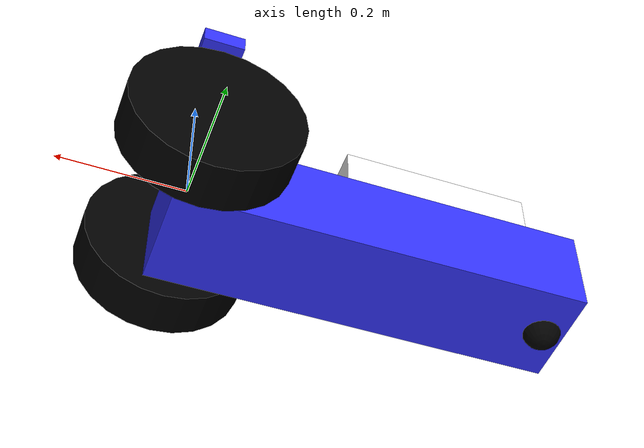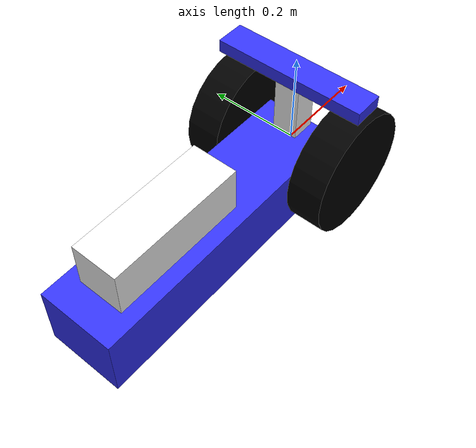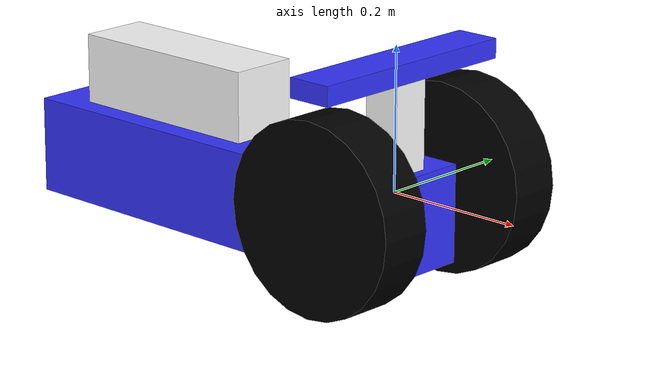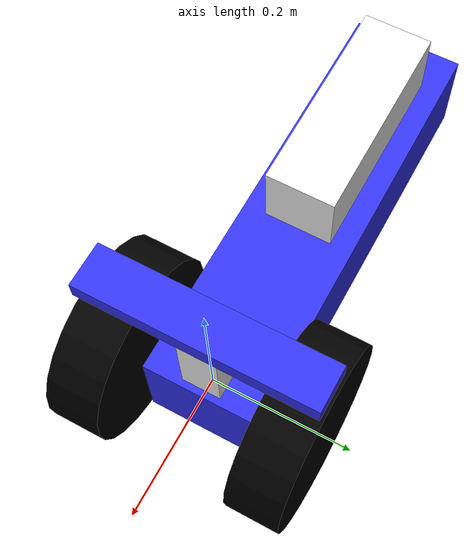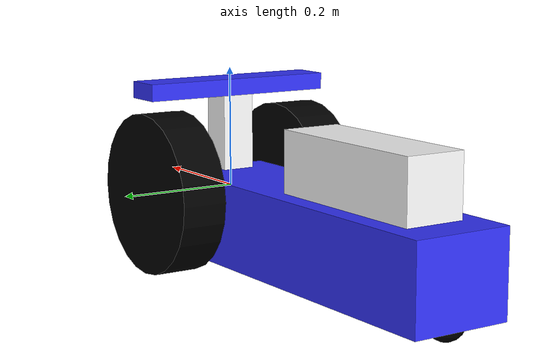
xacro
<?xml version="1.0" ?>
<robot name='robot' xmlns:xacro="http://ros.org/wiki/xacro">

    <xacro:include filename="gazebo.urdf.xacro" />
    <!--xacro:include filename="$(find robot_description)/urdf/lidar.urdf.xacro" /-->
    <!--xacro:include filename="$(find robot_description)/urdf/depth.urdf.xacro" /-->

    <xacro:property name="chassis_length" value="0.635"/>
    <xacro:property name="chassis_width" value="0.165"/>
    <xacro:property name="chassis_height" value="0.138"/>
    <xacro:property name="wheel_radius" value="0.133"/>
    <xacro:property name="wheel_thickness" value="0.076"/>
    <xacro:property name="wheel_mass" value="0.95"/>
    <xacro:property name="wheel_offset_x" value="0.6"/>
    <xacro:property name="wheel_offset_y" value="0.1285"/>
    <xacro:property name="wheel_offset_z" value="0.11"/>
    <xacro:property name="caster_wheel_radius" value="0.03"/>
    <xacro:property name="caster_wheel_mass" value="0.03"/>
    <xacro:property name="caster_wheel_offset_x" value="0.035"/>
    <xacro:property name="caster_wheel_offset_z" value="${wheel_offset_z - wheel_radius + caster_wheel_radius}"/>
    <xacro:property name="mass" value="1.0"/>

    <material name="white">
        <color rgba="1 1 1 1" />
    </material>

    <material name="orange">
        <color rgba="1 0.3 0.1 1"/>
    </material>

    <material name="blue">
        <color rgba="0.2 0.2 1 1"/>
    </material>

    <material name="black">
        <color rgba="0 0 0 1"/>
    </material>

    <material name="red">
        <color rgba="1 0 0 1"/>
    </material>

    <link name="base_link">
    </link>

    <link name="base_footprint">
    </link>

    <joint name="base_footprint_joint" type="fixed">
        <parent link="base_link"/>
        <child link="base_footprint"/>
        <origin xyz="0 0 -0.138" rpy="0 0 0"/>
    </joint>

    <joint name="chassis_joint" type="fixed">
        <parent link="base_link"/>
        <child link="chassis"/>
        <origin xyz="${-wheel_offset_x} 0 ${-wheel_offset_z}"/>
    </joint>

    <link name='chassis'>

    <inertial>
        <origin xyz="${chassis_length/2} 0 ${chassis_height/2}" rpy="0 0 0"/>
        <mass value="${mass}" />
        <inertia ixx="${(1/12) * mass * (chassis_width*chassis_width+chassis_height*chassis_height)}" ixy="0.0" ixz="0.0"
                 iyy="${(1/12) * mass * (chassis_length*chassis_length+chassis_height*chassis_height)}" iyz="0.0"
                 izz="${(1/12) * mass * (chassis_length*chassis_length+chassis_width*chassis_width)}" />
    </inertial>
    <visual>
        <origin xyz="${chassis_length/2} 0 ${chassis_height/2}"/>
        <geometry>
            <box size="${chassis_length} ${chassis_width} ${chassis_height}"/>
        </geometry>
        <material name="blue"/>
    </visual>
    <collision>
        <origin xyz="${chassis_length/2} 0 ${chassis_height/2}"/>
        <geometry>
            <box size="${chassis_length} ${chassis_width} ${chassis_height}"/>
        </geometry>
    </collision>
    </link>

    <gazebo reference="chassis">
        <material>Gazebo/Orange</material>
    </gazebo>

    <joint name="left_wheel_joint" type="continuous">
        <parent link="base_link"/>
        <child link="left_wheel"/>
        <origin xyz="0 ${wheel_offset_y} 0" rpy="-${pi/2} 0 0" />
        <axis xyz="0 0 1"/>
    </joint>

    <link name="left_wheel">
        <visual>
            <geometry>
                <cylinder radius="${wheel_radius}" length="${wheel_thickness}"/>
            </geometry>
            <material name="black"/>
        </visual>
        <collision>
            <geometry>
                <sphere radius="${wheel_radius}"/>
            </geometry>
        </collision>
        <inertial>
            <origin xyz="0 0 0" rpy="0 0 0"/>
            <mass value="${wheel_mass}" />
            <inertia ixx="${(1/12) * wheel_mass * (3*wheel_radius*wheel_radius + wheel_thickness*wheel_thickness)}" ixy="0.0" ixz="0.0"
                     iyy="${(1/12) * wheel_mass * (3*wheel_radius*wheel_radius + wheel_thickness*wheel_thickness)}" iyz="0.0"
                     izz="${(1/2) * wheel_mass * (wheel_radius*wheel_radius)}" />
        </inertial>
    </link>

    <link name="sub_spoiler">
        <visual>
            <geometry>
            <box size="${(1/12) * chassis_length} ${chassis_width/3} ${chassis_height}"/>
        </geometry>
            <material name="white"/>
        </visual>
        <collision>
            <geometry>
                <box size="${(1/12) * chassis_length} ${chassis_width/3} ${chassis_height}"/>
            </geometry>
        </collision>
    </link>

    <joint name="sub_spoiler_joint" type="fixed">
        <parent link="base_link"/>
        <child link="sub_spoiler"/>
        <origin xyz="0 0 0.10" rpy="0 0 0"/>
    </joint>

    <link name="spoiler">
        <visual>
            <geometry>
            <box size="${(1/10) * chassis_length} ${chassis_width * 2} ${chassis_height / 5}"/>
        </geometry>
            <material name="blue"/>
        </visual>
        <collision>
            <geometry>
                <box size="${(1/10) * chassis_length} ${chassis_width * 2} ${chassis_height / 5}"/>
            </geometry>
        </collision>
    </link>

    <joint name="spoiler_joint" type="fixed">
        <parent link="sub_spoiler"/>
        <child link="spoiler"/>
        <origin xyz="0 0 0.07" rpy="0 0 0"/>
    </joint>

    <gazebo reference="left_wheel">
        <material>Gazebo/Black</material>
    </gazebo>

    <joint name="right_wheel_joint" type="continuous">
        <parent link="base_link"/>
        <child link="right_wheel"/>
        <origin xyz="0 ${-wheel_offset_y} 0" rpy="${pi/2} 0 0" />
        <axis xyz="0 0 -1"/>
    </joint>

    <link name="right_wheel">
        <visual>
            <geometry>
                <cylinder radius="${wheel_radius}" length="${wheel_thickness}"/>
            </geometry>
            <material name="black"/>
        </visual>
        <collision>
            <geometry>
                <sphere radius="${wheel_radius}"/>
            </geometry>
        </collision>
        <inertial>
            <origin xyz="0 0 0" rpy="0 0 0"/>
            <mass value="${wheel_mass}" />
            <inertia ixx="${(1/12) * wheel_mass * (3*wheel_radius*wheel_radius + wheel_thickness*wheel_thickness)}" ixy="0.0" ixz="0.0"
                     iyy="${(1/12) * wheel_mass * (3*wheel_radius*wheel_radius + wheel_thickness*wheel_thickness)}" iyz="0.0"
                     izz="${(1/2) * wheel_mass * (wheel_radius*wheel_radius)}" />
        </inertial>
    </link>

    <gazebo reference="right_wheel">
        <material>Gazebo/Black</material>
    </gazebo>

    <joint name="caster_wheel_joint" type="fixed">
        <parent link="chassis"/>
        <child link="caster_wheel"/>
        <origin xyz="${caster_wheel_offset_x} 0 ${caster_wheel_offset_z}"/>
    </joint>

    <link name="caster_wheel">
        <visual>
            <geometry>
                <sphere radius="${caster_wheel_radius}"/>
            </geometry>
            <material name="black"/>
        </visual>
        <collision>
            <geometry>
                <sphere radius="${caster_wheel_radius}"/>
            </geometry>
        </collision>
        <inertial>
            <origin xyz="0 0 0" rpy="0 0 0"/>
            <mass value="${caster_wheel_mass}" />
            <inertia ixx="${(2/5) * caster_wheel_mass * (caster_wheel_radius*caster_wheel_radius)}" ixy="0.0" ixz="0.0"
                     iyy="${(2/5) * caster_wheel_mass * (caster_wheel_radius*caster_wheel_radius)}" iyz="0.0"
                     izz="${(2/5) * caster_wheel_mass * (caster_wheel_radius*caster_wheel_radius)}" />
        </inertial>
    </link>

    <gazebo reference="caster_wheel">
        <material>Gazebo/White</material>
        <mu1 value="0.001"/>
        <mu2 value="0.001"/>
    </gazebo>

<link name="front_box">
    <visual>
        <origin xyz="${chassis_length/6} 0 ${chassis_height/2}" rpy="0 0 0"/>
        <geometry>
            <box size="0.3 0.1 0.2"/>
        </geometry>
        <material name="white"/>
    </visual>
    <collision>
        <origin xyz="${chassis_length/6} 0 ${chassis_height/2}" rpy="0 0 0"/>
        <geometry>
            <box size="0.3 0.1 0.2"/>
        </geometry>
    </collision>
    <inertial>
        <origin xyz="${chassis_length/6} 0 ${chassis_height/2}" rpy="0 0 0"/>
        <mass value="0.5"/>
        <inertia ixx="0.001" ixy="0.0" ixz="0.0"
                 iyy="0.001" iyz="0.0"
                 izz="0.001"/>
    </inertial>
</link>

<joint name="front_box_joint" type="fixed">
    <parent link="chassis"/>
    <child link="front_box"/>
    <origin xyz="${chassis_length/6} 0 ${chassis_height/2}" rpy="0 0 0"/>
</joint>

<gazebo reference="front_box">
    <material>Gazebo/Red</material>
</gazebo>

</robot>
